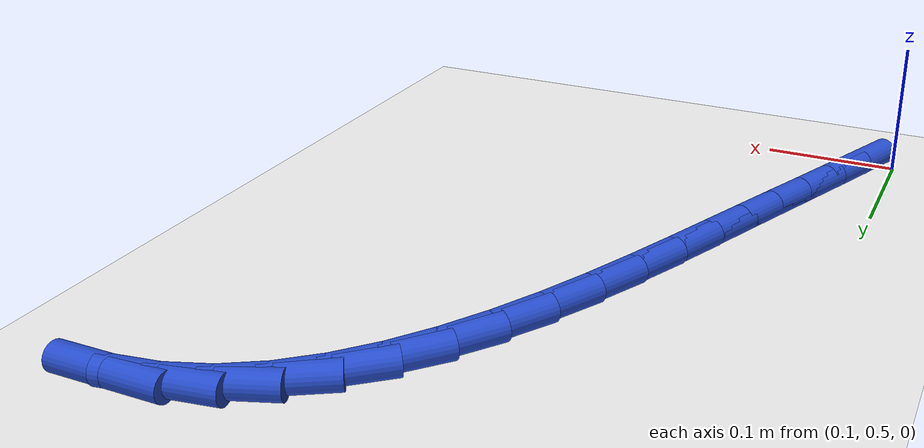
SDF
<sdf version="1.6">
 <world name="default">
  <model name="ground_plane">
   <static>1</static>
   <link name="link">
    <collision name="collision">
     <geometry><plane><normal>0 0 1</normal><size>100 100</size></plane></geometry>
     <surface><friction><ode><mu>100</mu><mu2>50</mu2></ode></friction></surface>
    </collision>
    <visual name="visual">
     <cast_shadows>0</cast_shadows>
     <geometry><plane><normal>0 0 1</normal><size>100 100</size></plane></geometry>
     <material>
      <script><uri>file://media/materials/scripts/gazebo.material</uri><name>Gazebo/WhiteGlow</name></script>
     </material>
    </visual>
   </link>
  </model>
  <model name="line">
   <link name="link_16">
    <pose>0.12510651910448728 0.5239645106699898 0.01 0 1.57 1.1818629321906435</pose>
    <collision name="collision">
     <geometry><cylinder><radius>0.01</radius><length>0.08</length></cylinder></geometry>
    </collision>
    <visual name="visual">
     <material>
      <script><name>Gazebo/Blue</name><uri>file://media/materials/scripts/gazebo.material</uri></script>
     </material>
     <geometry><cylinder><radius>0.01</radius><length>0.08</length></cylinder></geometry>
    </visual>
   </link>
   <link name="link_17">
    <pose>0.13817488715959353 0.5558534630326982 0.01 0 1.57 1.1775423774596836</pose>
    <collision name="collision">
     <geometry><cylinder><radius>0.01</radius><length>0.08</length></cylinder></geometry>
    </collision>
    <visual name="visual">
     <material>
      <script><name>Gazebo/Blue</name><uri>file://media/materials/scripts/gazebo.material</uri></script>
     </material>
     <geometry><cylinder><radius>0.01</radius><length>0.08</length></cylinder></geometry>
    </visual>
   </link>
   <link name="link_18">
    <pose>0.1516183640612465 0.5882580197998035 0.01 0 1.57 1.1756855686879841</pose>
    <collision name="collision">
     <geometry><cylinder><radius>0.01</radius><length>0.08</length></cylinder></geometry>
    </collision>
    <visual name="visual">
     <material>
      <script><name>Gazebo/Blue</name><uri>file://media/materials/scripts/gazebo.material</uri></script>
     </material>
     <geometry><cylinder><radius>0.01</radius><length>0.08</length></cylinder></geometry>
    </visual>
   </link>
   <link name="link_19">
    <pose>0.16540181007093377 0.621308530393164 0.01 0 1.57 1.1761621559635473</pose>
    <collision name="collision">
     <geometry><cylinder><radius>0.01</radius><length>0.08</length></cylinder></geometry>
    </collision>
    <visual name="visual">
     <material>
      <script><name>Gazebo/Blue</name><uri>file://media/materials/scripts/gazebo.material</uri></script>
     </material>
     <geometry><cylinder><radius>0.01</radius><length>0.08</length></cylinder></geometry>
    </visual>
   </link>
   <link name="link_20">
    <pose>0.17949008545014275 0.6551353442346376 0.01 0 1.57 1.1786547158440774</pose>
    <collision name="collision">
     <geometry><cylinder><radius>0.01</radius><length>0.08</length></cylinder></geometry>
    </collision>
    <visual name="visual">
     <material>
      <script><name>Gazebo/Blue</name><uri>file://media/materials/scripts/gazebo.material</uri></script>
     </material>
     <geometry><cylinder><radius>0.01</radius><length>0.08</length></cylinder></geometry>
    </visual>
   </link>
   <link name="link_21">
    <pose>0.19385090474960048 0.6898601692216936 0.01 0 1.57 1.1775593518212568</pose>
    <collision name="collision">
     <geometry><cylinder><radius>0.01</radius><length>0.08</length></cylinder></geometry>
    </collision>
    <visual name="visual">
     <material>
      <script><name>Gazebo/Blue</name><uri>file://media/materials/scripts/gazebo.material</uri></script>
     </material>
     <geometry><cylinder><radius>0.01</radius><length>0.08</length></cylinder></geometry>
    </visual>
   </link>
   <link name="link_22">
    <pose>0.20855274997165604 0.7252996340121879 0.01 0 1.57 1.1663037624099122</pose>
    <collision name="collision">
     <geometry><cylinder><radius>0.01</radius><length>0.08</length></cylinder></geometry>
    </collision>
    <visual name="visual">
     <material>
      <script><name>Gazebo/Blue</name><uri>file://media/materials/scripts/gazebo.material</uri></script>
     </material>
     <geometry><cylinder><radius>0.01</radius><length>0.08</length></cylinder></geometry>
    </visual>
   </link>
   <link name="link_23">
    <pose>0.22378939431533637 0.7608910409795715 0.01 0 1.57 1.1443427767224301</pose>
    <collision name="collision">
     <geometry><cylinder><radius>0.01</radius><length>0.08</length></cylinder></geometry>
    </collision>
    <visual name="visual">
     <material>
      <script><name>Gazebo/Blue</name><uri>file://media/materials/scripts/gazebo.material</uri></script>
     </material>
     <geometry><cylinder><radius>0.01</radius><length>0.08</length></cylinder></geometry>
    </visual>
   </link>
   <link name="link_24">
    <pose>0.23976244308564343 0.7960479803472201 0.01 0 1.57 1.1108342289105209</pose>
    <collision name="collision">
     <geometry><cylinder><radius>0.01</radius><length>0.08</length></cylinder></geometry>
    </collision>
    <visual name="visual">
     <material>
      <script><name>Gazebo/Blue</name><uri>file://media/materials/scripts/gazebo.material</uri></script>
     </material>
     <geometry><cylinder><radius>0.01</radius><length>0.08</length></cylinder></geometry>
    </visual>
   </link>
   <link name="link_25">
    <pose>0.2566735015875796 0.8301840423385108 0.01 0 1.57 1.0641881782192404</pose>
    <collision name="collision">
     <geometry><cylinder><radius>0.01</radius><length>0.08</length></cylinder></geometry>
    </collision>
    <visual name="visual">
     <material>
      <script><name>Gazebo/Blue</name><uri>file://media/materials/scripts/gazebo.material</uri></script>
     </material>
     <geometry><cylinder><radius>0.01</radius><length>0.08</length></cylinder></geometry>
    </visual>
   </link>
   <link name="link_26">
    <pose>0.2747241751261469 0.8627128171768198 0.01 0 1.57 1.0020108116715092</pose>
    <collision name="collision">
     <geometry><cylinder><radius>0.01</radius><length>0.08</length></cylinder></geometry>
    </collision>
    <visual name="visual">
     <material>
      <script><name>Gazebo/Blue</name><uri>file://media/materials/scripts/gazebo.material</uri></script>
     </material>
     <geometry><cylinder><radius>0.01</radius><length>0.08</length></cylinder></geometry>
    </visual>
   </link>
   <link name="link_27">
    <pose>0.29411606900634746 0.8930478950855231 0.01 0 1.57 0.9210882730769017</pose>
    <collision name="collision">
     <geometry><cylinder><radius>0.01</radius><length>0.08</length></cylinder></geometry>
    </collision>
    <visual name="visual">
     <material>
      <script><name>Gazebo/Blue</name><uri>file://media/materials/scripts/gazebo.material</uri></script>
     </material>
     <geometry><cylinder><radius>0.01</radius><length>0.08</length></cylinder></geometry>
    </visual>
   </link>
   <link name="link_28">
    <pose>0.3150507885331837 0.9206028662879975 0.01 0 1.57 0.8175906086443833</pose>
    <collision name="collision">
     <geometry><cylinder><radius>0.01</radius><length>0.08</length></cylinder></geometry>
    </collision>
    <visual name="visual">
     <material>
      <script><name>Gazebo/Blue</name><uri>file://media/materials/scripts/gazebo.material</uri></script>
     </material>
     <geometry><cylinder><radius>0.01</radius><length>0.08</length></cylinder></geometry>
    </visual>
   </link>
   <link name="link_29">
    <pose>0.3377299390116573 0.9447913210076189 0.01 0 1.57 0.6878578503736322</pose>
    <collision name="collision">
     <geometry><cylinder><radius>0.01</radius><length>0.08</length></cylinder></geometry>
    </collision>
    <visual name="visual">
     <material>
      <script><name>Gazebo/Blue</name><uri>file://media/materials/scripts/gazebo.material</uri></script>
     </material>
     <geometry><cylinder><radius>0.01</radius><length>0.08</length></cylinder></geometry>
    </visual>
   </link>
   <link name="link_30">
    <pose>0.3623551257467708 0.965026849467764 0.01 0 1.57 0.5302651371534446</pose>
    <collision name="collision">
     <geometry><cylinder><radius>0.01</radius><length>0.08</length></cylinder></geometry>
    </collision>
    <visual name="visual">
     <material>
      <script><name>Gazebo/Blue</name><uri>file://media/materials/scripts/gazebo.material</uri></script>
     </material>
     <geometry><cylinder><radius>0.01</radius><length>0.08</length></cylinder></geometry>
    </visual>
   </link>
   <link name="link_31">
    <pose>0.3891279540435262 0.980723041891809 0.01 0 1.57 0.34818254958315464</pose>
    <collision name="collision">
     <geometry><cylinder><radius>0.01</radius><length>0.08</length></cylinder></geometry>
    </collision>
    <visual name="visual">
     <material>
      <script><name>Gazebo/Blue</name><uri>file://media/materials/scripts/gazebo.material</uri></script>
     </material>
     <geometry><cylinder><radius>0.01</radius><length>0.08</length></cylinder></geometry>
    </visual>
   </link>
   <link name="link_32">
    <pose>0.41825002920692567 0.9912934885031303 0.01 0 1.57 0.16001263623155992</pose>
    <collision name="collision">
     <geometry><cylinder><radius>0.01</radius><length>0.08</length></cylinder></geometry>
    </collision>
    <visual name="visual">
     <material>
      <script><name>Gazebo/Blue</name><uri>file://media/materials/scripts/gazebo.material</uri></script>
     </material>
     <geometry><cylinder><radius>0.01</radius><length>0.08</length></cylinder></geometry>
    </visual>
   </link>
   <link name="link_33">
    <pose>0.4498248670189138 0.9963894281807768 0.01 0 1.57 0.008466774421123499</pose>
    <collision name="collision">
     <geometry><cylinder><radius>0.01</radius><length>0.08</length></cylinder></geometry>
    </collision>
    <visual name="visual">
     <material>
      <script><name>Gazebo/Blue</name><uri>file://media/materials/scripts/gazebo.material</uri></script>
     </material>
     <geometry><cylinder><radius>0.01</radius><length>0.08</length></cylinder></geometry>
    </visual>
   </link>
  </model>
 </world>
</sdf>
